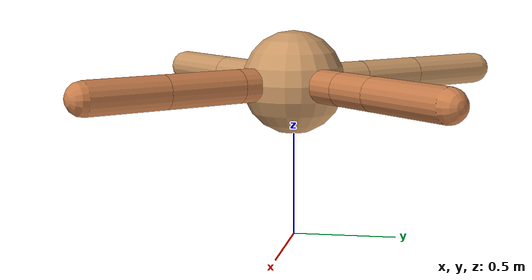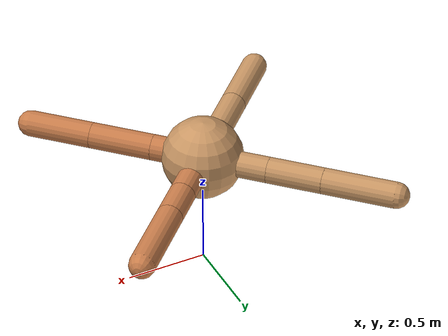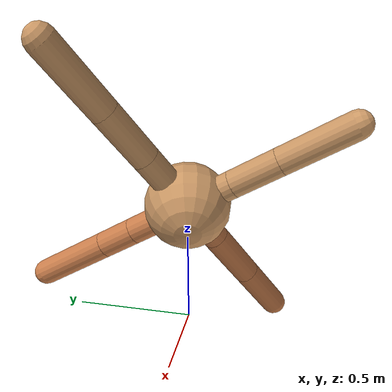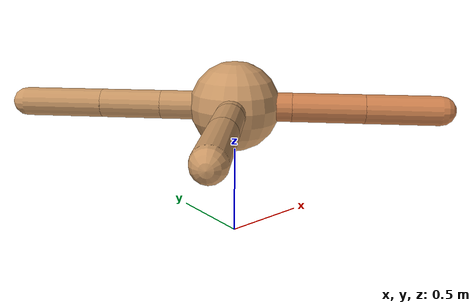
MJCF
<mujoco model="ant">
  <compiler angle="degree" coordinate="local" inertiafromgeom="true" />
  <option integrator="RK4" timestep="0.01" />
  <custom>
    <numeric data="0.0 0.0 0.55 1.0 0.0 0.0 0.0 0.0 1.0 0.0 -1.0 0.0 -1.0 0.0 1.0" name="init_qpos" />
  </custom>
  <default>
    <joint armature="1" damping="1" limited="true" />
    <geom conaffinity="0" condim="3" density="5.0" friction="1.5 0.1 0.1" margin="0.01" rgba="0.8 0.6 0.4 1" />
  </default>
  <worldbody>
    <body name="torso" pos="0 0 0.75">
      <geom name="torso_geom" pos="0 0 0" size="0.25" type="sphere" />

      <body name="front_left_leg" pos="0 0 0">
        <geom fromto="0.0 0.0 0.0 0.2697629082757683 0.2697629082757683 0.0" name="aux_1_geom" size="0.08" type="capsule" rgba=".8 .5 .3 1" />
        <body name="aux_1" pos="0.2697629082757683 0.2697629082757683 0.0">
          <joint axis="0 0 1" name="hip_1" pos="0.0 0.0 0.0" range="-40 40" type="hinge" />
          <geom fromto="0.0 0.0 0.0 0.1584292537818918 0.1584292537818918 0.0" name="left_leg_geom" size="0.08" type="capsule" rgba=".8 .5 .3 1" />
          <body pos="0.1584292537818918 0.1584292537818918 0.0" name="front_left_foot">
            <joint axis="-1 1 0" name="ankle_1" pos="0.0 0.0 0.0" range="30 100" type="hinge" />
            <geom fromto="0.0 0.0 0.0 0.3405116957184305 0.3405116957184305 0.0" name="left_ankle_geom" size="0.08" type="capsule" rgba=".8 .5 .3 1" />
          </body>
        </body>
      </body>
      <body name="front_right_leg" pos="0 0 0">
        <geom fromto="0.0 0.0 0.0 -0.29167518576783563 0.29167518576783563 0.0" name="aux_2_geom" size="0.08" type="capsule" />
        <body name="aux_2" pos="-0.29167518576783563 0.29167518576783563 0.0">
          <joint axis="0 0 1" name="hip_2" pos="0.0 0.0 0.0" range="-40 40" type="hinge" />
          <geom fromto="0.0 0.0 0.0 -0.24085425017971512 0.24085425017971512 0.0" name="right_leg_geom" size="0.08" type="capsule" />
          <body pos="-0.24085425017971512 0.24085425017971512 0.0" name="front_right_foot">
            <joint axis="1 1 0" name="ankle_2" pos="0.0 0.0 0.0" range="-100 -30" type="hinge" />
            <geom fromto="0.0 0.0 0.0 -0.316220597326154 0.316220597326154 0.0" name="right_ankle_geom" size="0.08" type="capsule" />
          </body>
        </body>
      </body>
      <body name="left_back_leg" pos="0 0 0">
        <geom fromto="0.0 0.0 0.0 -0.20896989777038086 -0.20896989777038086 0.0" name="aux_3_geom" size="0.08" type="capsule" />
        <body name="aux_3" pos="-0.20896989777038086 -0.20896989777038086 0.0">
          <joint axis="0 0 1" name="hip_3" pos="0.0 0.0 0.0" range="-40 40" type="hinge" />
          <geom fromto="0.0 0.0 0.0 -0.20431495627441032 -0.20431495627441032 0.0" name="back_leg_geom" size="0.08" type="capsule" />
          <body pos="-0.20431495627441032 -0.20431495627441032 0.0" name="left_back_foot">
            <joint axis="-1 1 0" name="ankle_3" pos="0.0 0.0 0.0" range="-100 -30" type="hinge" />
            <geom fromto="0.0 0.0 0.0 -0.30476274419230814 -0.30476274419230814 0.0" name="third_ankle_geom" size="0.08" type="capsule" />
          </body>
        </body>
      </body>
      <body name="right_back_leg" pos="0 0 0">
        <geom fromto="0.0 0.0 0.0 0.22300856713496084 -0.22300856713496084 0.0" name="aux_4_geom" size="0.08" type="capsule" rgba=".8 .5 .3 1" />
        <body name="aux_4" pos="0.22300856713496084 -0.22300856713496084 0.0">
          <joint axis="0 0 1" name="hip_4" pos="0.0 0.0 0.0" range="-40 40" type="hinge" />
          <geom fromto="0.0 0.0 0.0 0.27659775814984955 -0.27659775814984955 0.0" name="rightback_leg_geom" size="0.08" type="capsule" rgba=".8 .5 .3 1" />
          <body pos="0.27659775814984955 -0.27659775814984955 0.0" name="right_back_foot">
            <joint axis="1 1 0" name="ankle_4" pos="0.0 0.0 0.0" range="30 100" type="hinge" />
            <geom fromto="0.0 0.0 0.0 0.2808387409334429 -0.2808387409334429 0.0" name="fourth_ankle_geom" size="0.08" type="capsule" rgba=".8 .5 .3 1" />
          </body>
        </body>
      </body>
    </body>
  </worldbody>
  <actuator>
    <motor ctrllimited="true" ctrlrange="-1.0 1.0" joint="hip_4" gear="150" />
    <motor ctrllimited="true" ctrlrange="-1.0 1.0" joint="ankle_4" gear="150" />
    <motor ctrllimited="true" ctrlrange="-1.0 1.0" joint="hip_1" gear="150" />
    <motor ctrllimited="true" ctrlrange="-1.0 1.0" joint="ankle_1" gear="150" />
    <motor ctrllimited="true" ctrlrange="-1.0 1.0" joint="hip_2" gear="150" />
    <motor ctrllimited="true" ctrlrange="-1.0 1.0" joint="ankle_2" gear="150" />
    <motor ctrllimited="true" ctrlrange="-1.0 1.0" joint="hip_3" gear="150" />
    <motor ctrllimited="true" ctrlrange="-1.0 1.0" joint="ankle_3" gear="150" />
  </actuator>
</mujoco>
